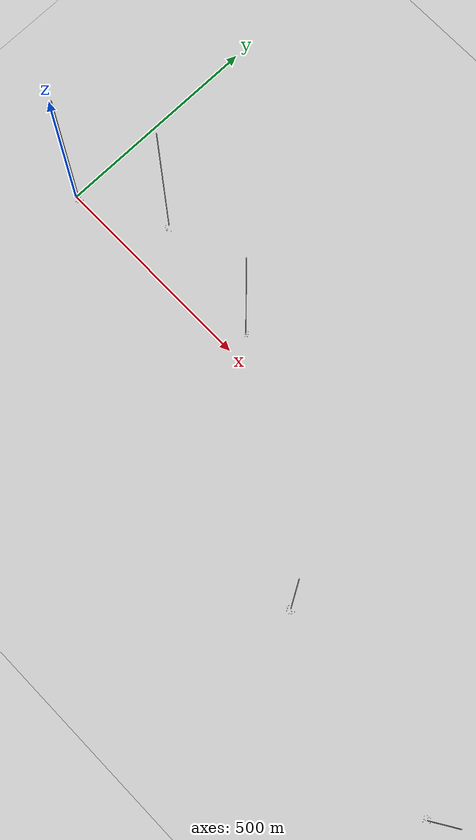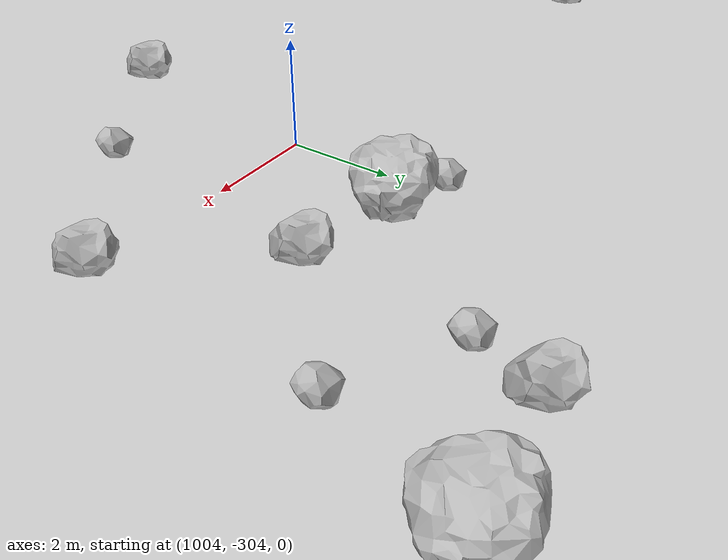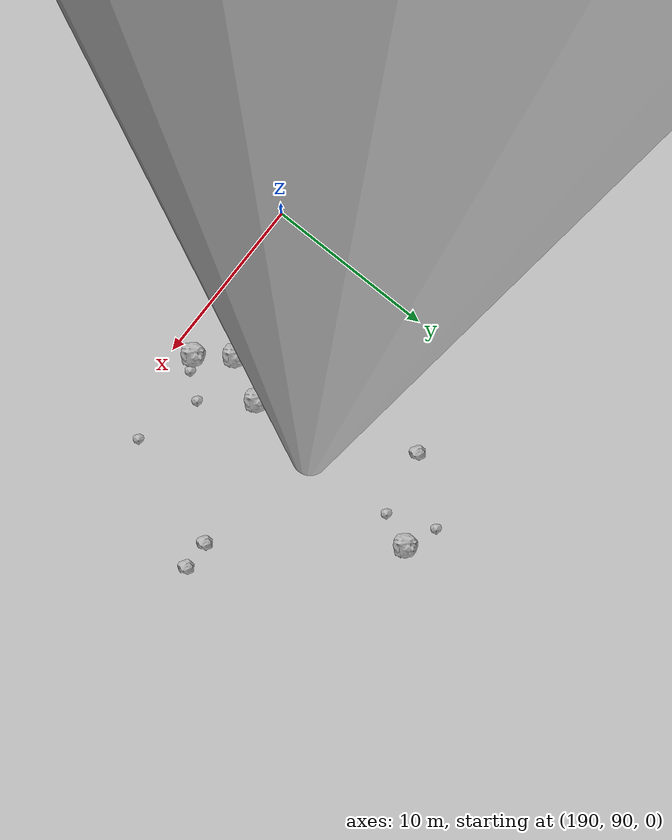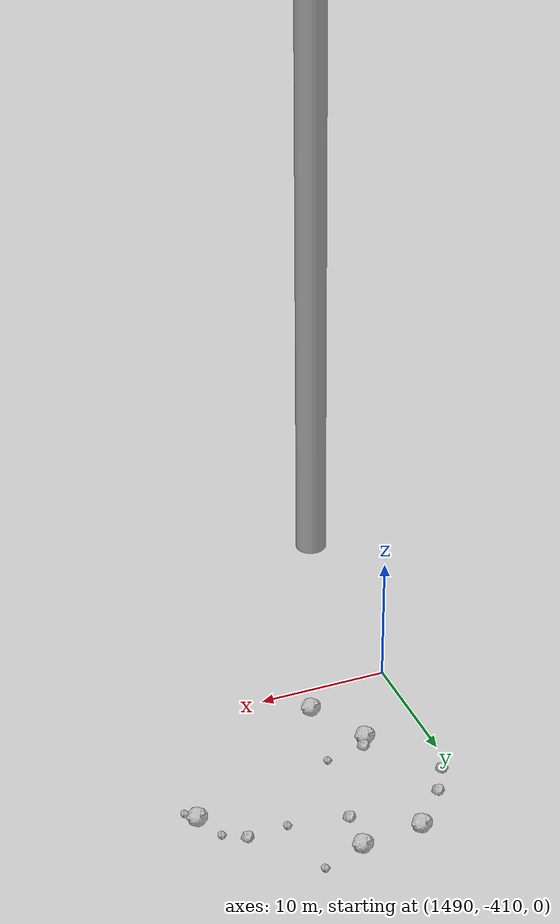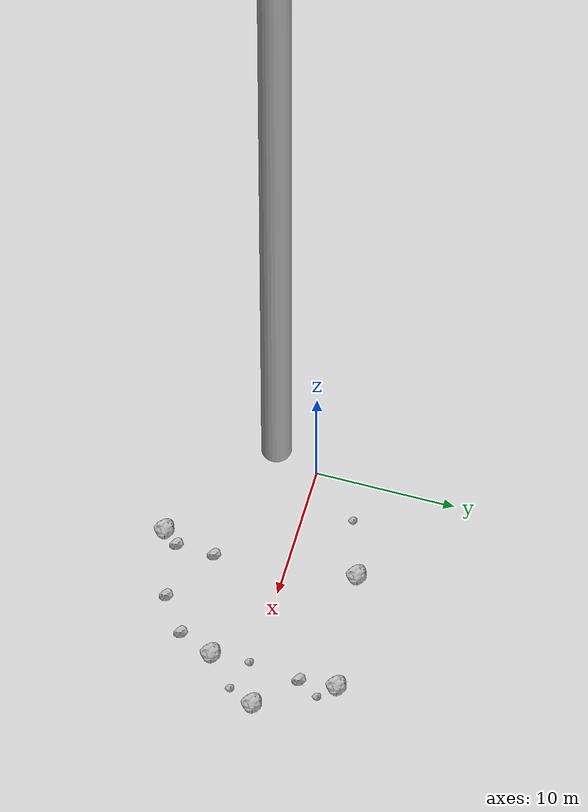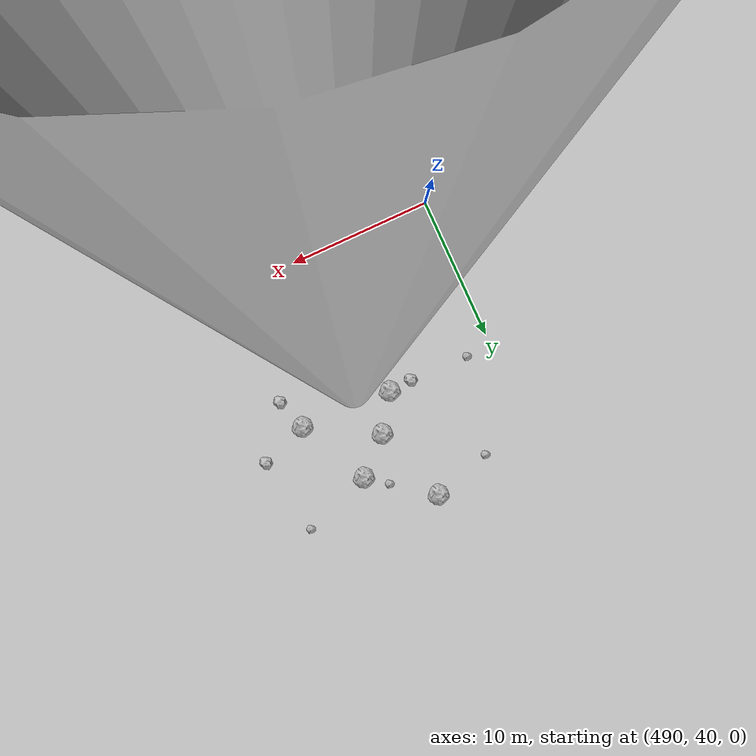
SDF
<?xml version="1.0" ?>
<sdf version="1.6">
  <world name="default">

    <include>
      <uri>model://custom_ground</uri>
    </include>

    <include>
      <uri>model://sun</uri>
    </include>

    <spherical_coordinates>
      <surface_model>EARTH_WGS84</surface_model>
      <latitude_deg>38.161479</latitude_deg>
      <longitude_deg>-122.454630</longitude_deg>
      <elevation>488.0</elevation>
      <heading_deg>90</heading_deg>
    </spherical_coordinates>

    <model name="rock1_0_0">
      <include>
        <uri>model://rock1</uri>
        <pose>18.989054035852487 0.7045006014862114 0.5 0 0 0</pose>
      </include>
    </model>
    <model name="rock1_0_1">
      <include>
        <uri>model://rock1</uri>
        <pose>16.023350306724165 -3.0867173951060796 0.5 0 0 0</pose>
      </include>
    </model>
    <model name="rock1_0_2">
      <include>
        <uri>model://rock1</uri>
        <pose>16.111193745884734 5.923418710677344 0.5 0 0 0</pose>
      </include>
    </model>
    <model name="rock1_0_3">
      <include>
        <uri>model://rock1</uri>
        <pose>7.390333618002898 4.940157309376845 0.5 0 0 0</pose>
      </include>
    </model>
    <model name="rock1_0_4">
      <include>
        <uri>model://rock1</uri>
        <pose>7.517460904840592 -8.90882082147077 0.5 0 0 0</pose>
      </include>
    </model>
    <model name="rock2_0_0">
      <include>
        <uri>model://rock2</uri>
        <pose>14.876389987005956 -5.53582345515755 0.3 0 0 0</pose>
      </include>
    </model>
    <model name="rock2_0_1">
      <include>
        <uri>model://rock2</uri>
        <pose>8.28474099945091 -7.773154291808197 0.3 0 0 0</pose>
      </include>
    </model>
    <model name="rock2_0_2">
      <include>
        <uri>model://rock2</uri>
        <pose>12.349730737134774 -7.330387547113997 0.3 0 0 0</pose>
      </include>
    </model>
    <model name="rock2_0_3">
      <include>
        <uri>model://rock2</uri>
        <pose>16.228125532112475 3.320951220334706 0.3 0 0 0</pose>
      </include>
    </model>
    <model name="rock2_0_4">
      <include>
        <uri>model://rock2</uri>
        <pose>8.368856235843529 -5.025133609918065 0.3 0 0 0</pose>
      </include>
    </model>
    <model name="rock3_0_0">
      <include>
        <uri>model://rock3</uri>
        <pose>15.76767446999169 -0.3987612154721809 0.2 0 0 0</pose>
      </include>
    </model>
    <model name="rock3_0_1">
      <include>
        <uri>model://rock3</uri>
        <pose>18.077071377113263 -1.1279314865971308 0.2 0 0 0</pose>
      </include>
    </model>
    <model name="rock3_0_2">
      <include>
        <uri>model://rock3</uri>
        <pose>17.08145574281692 4.797958488627263 0.2 0 0 0</pose>
      </include>
    </model>
    <model name="rock3_0_3">
      <include>
        <uri>model://rock3</uri>
        <pose>7.301367111467661 -8.981494291081123 0.2 0 0 0</pose>
      </include>
    </model>
    <model name="rock3_0_4">
      <include>
        <uri>model://rock3</uri>
        <pose>3.0748932684428865 3.4947798703726 0.2 0 0 0</pose>
      </include>
    </model>
    <model name="rock1_1_0">
      <include>
        <uri>model://rock1</uri>
        <pose>198.08085332608792 92.94462721582936 0.5 0 0 0</pose>
      </include>
    </model>
    <model name="rock1_1_1">
      <include>
        <uri>model://rock1</uri>
        <pose>192.51135190562843 94.38405351307335 0.5 0 0 0</pose>
      </include>
    </model>
    <model name="rock1_1_2">
      <include>
        <uri>model://rock1</uri>
        <pose>199.31656905972412 95.50188652743306 0.5 0 0 0</pose>
      </include>
    </model>
    <model name="rock1_1_3">
      <include>
        <uri>model://rock1</uri>
        <pose>199.52241928089504 91.05946981288633 0.5 0 0 0</pose>
      </include>
    </model>
    <model name="rock1_1_4">
      <include>
        <uri>model://rock1</uri>
        <pose>200.51826166460637 107.31536424822568 0.5 0 0 0</pose>
      </include>
    </model>
    <model name="rock2_1_0">
      <include>
        <uri>model://rock2</uri>
        <pose>190.0591844167219 99.03600891986932 0.3 0 0 0</pose>
      </include>
    </model>
    <model name="rock2_1_1">
      <include>
        <uri>model://rock2</uri>
        <pose>209.21180610117491 98.31016374193622 0.3 0 0 0</pose>
      </include>
    </model>
    <model name="rock2_1_2">
      <include>
        <uri>model://rock2</uri>
        <pose>207.47551183383018 98.27962440302062 0.3 0 0 0</pose>
      </include>
    </model>
    <model name="rock2_1_3">
      <include>
        <uri>model://rock2</uri>
        <pose>197.1128716602974 100.35384834094086 0.3 0 0 0</pose>
      </include>
    </model>
    <model name="rock2_1_4">
      <include>
        <uri>model://rock2</uri>
        <pose>195.88874697218387 104.59323385614461 0.3 0 0 0</pose>
      </include>
    </model>
    <model name="rock3_1_0">
      <include>
        <uri>model://rock3</uri>
        <pose>199.70532207261098 105.33025542158781 0.2 0 0 0</pose>
      </include>
    </model>
    <model name="rock3_1_1">
      <include>
        <uri>model://rock3</uri>
        <pose>205.17448756023137 91.59980572512617 0.2 0 0 0</pose>
      </include>
    </model>
    <model name="rock3_1_2">
      <include>
        <uri>model://rock3</uri>
        <pose>200.29333123313467 91.4998393151248 0.2 0 0 0</pose>
      </include>
    </model>
    <model name="rock3_1_3">
      <include>
        <uri>model://rock3</uri>
        <pose>198.61673850078003 108.08878564895915 0.2 0 0 0</pose>
      </include>
    </model>
    <model name="rock3_1_4">
      <include>
        <uri>model://rock3</uri>
        <pose>201.3896926700556 92.86322230244407 0.2 0 0 0</pose>
      </include>
    </model>
    <model name="rock1_2_0">
      <include>
        <uri>model://rock1</uri>
        <pose>497.61764499620085 58.667602222358056 0.5 0 0 0</pose>
      </include>
    </model>
    <model name="rock1_2_1">
      <include>
        <uri>model://rock1</uri>
        <pose>501.7860299177521 55.48051770057091 0.5 0 0 0</pose>
      </include>
    </model>
    <model name="rock1_2_2">
      <include>
        <uri>model://rock1</uri>
        <pose>497.69572884833707 50.82114679330412 0.5 0 0 0</pose>
      </include>
    </model>
    <model name="rock1_2_3">
      <include>
        <uri>model://rock1</uri>
        <pose>504.1747924837572 50.56345716918521 0.5 0 0 0</pose>
      </include>
    </model>
    <model name="rock1_2_4">
      <include>
        <uri>model://rock1</uri>
        <pose>499.38793523496486 53.274795956962045 0.5 0 0 0</pose>
      </include>
    </model>
    <model name="rock2_2_0">
      <include>
        <uri>model://rock2</uri>
        <pose>496.0257040772272 50.738558261495015 0.3 0 0 0</pose>
      </include>
    </model>
    <model name="rock2_2_1">
      <include>
        <uri>model://rock2</uri>
        <pose>500.46778285412097 46.64946911104121 0.3 0 0 0</pose>
      </include>
    </model>
    <model name="rock2_2_2">
      <include>
        <uri>model://rock2</uri>
        <pose>497.0598513960205 40.97914079101106 0.3 0 0 0</pose>
      </include>
    </model>
    <model name="rock2_2_3">
      <include>
        <uri>model://rock2</uri>
        <pose>507.4709702821078 51.790050192670336 0.3 0 0 0</pose>
      </include>
    </model>
    <model name="rock2_2_4">
      <include>
        <uri>model://rock2</uri>
        <pose>504.86413292771135 48.38394002794549 0.3 0 0 0</pose>
      </include>
    </model>
    <model name="rock3_2_0">
      <include>
        <uri>model://rock3</uri>
        <pose>506.53469229435416 57.19745894323128 0.2 0 0 0</pose>
      </include>
    </model>
    <model name="rock3_2_1">
      <include>
        <uri>model://rock3</uri>
        <pose>500.31952667162227 56.61885577904177 0.2 0 0 0</pose>
      </include>
    </model>
    <model name="rock3_2_2">
      <include>
        <uri>model://rock3</uri>
        <pose>501.05256281317827 46.31163187415047 0.2 0 0 0</pose>
      </include>
    </model>
    <model name="rock3_2_3">
      <include>
        <uri>model://rock3</uri>
        <pose>491.80398322442795 50.83885384766704 0.2 0 0 0</pose>
      </include>
    </model>
    <model name="rock3_2_4">
      <include>
        <uri>model://rock3</uri>
        <pose>493.4733619942428 57.52808105111965 0.2 0 0 0</pose>
      </include>
    </model>
    <model name="rock1_3_0">
      <include>
        <uri>model://rock1</uri>
        <pose>991.0546196726501 -297.3078929330764 0.5 0 0 0</pose>
      </include>
    </model>
    <model name="rock1_3_1">
      <include>
        <uri>model://rock1</uri>
        <pose>1009.3862826363379 -297.5095643685142 0.5 0 0 0</pose>
      </include>
    </model>
    <model name="rock1_3_2">
      <include>
        <uri>model://rock1</uri>
        <pose>993.5505071048048 -303.14166264902633 0.5 0 0 0</pose>
      </include>
    </model>
    <model name="rock1_3_3">
      <include>
        <uri>model://rock1</uri>
        <pose>996.2616662900147 -307.82427806886534 0.5 0 0 0</pose>
      </include>
    </model>
    <model name="rock1_3_4">
      <include>
        <uri>model://rock1</uri>
        <pose>1004.8215677519487 -301.3932454377138 0.5 0 0 0</pose>
      </include>
    </model>
    <model name="rock2_3_0">
      <include>
        <uri>model://rock2</uri>
        <pose>1008.5921975164708 -304.15755666940726 0.3 0 0 0</pose>
      </include>
    </model>
    <model name="rock2_3_1">
      <include>
        <uri>model://rock2</uri>
        <pose>1006.6309642988317 -301.74464463219266 0.3 0 0 0</pose>
      </include>
    </model>
    <model name="rock2_3_2">
      <include>
        <uri>model://rock2</uri>
        <pose>1007.1759357542119 -297.6756934088562 0.3 0 0 0</pose>
      </include>
    </model>
    <model name="rock2_3_3">
      <include>
        <uri>model://rock2</uri>
        <pose>1003.3318267017619 -308.54253065298616 0.3 0 0 0</pose>
      </include>
    </model>
    <model name="rock2_3_4">
      <include>
        <uri>model://rock2</uri>
        <pose>991.0167517657077 -301.4596056546811 0.3 0 0 0</pose>
      </include>
    </model>
    <model name="rock3_3_0">
      <include>
        <uri>model://rock3</uri>
        <pose>1006.791649174731 -298.88764926234086 0.2 0 0 0</pose>
      </include>
    </model>
    <model name="rock3_3_1">
      <include>
        <uri>model://rock3</uri>
        <pose>1008.6794028815748 -299.93420570878635 0.2 0 0 0</pose>
      </include>
    </model>
    <model name="rock3_3_2">
      <include>
        <uri>model://rock3</uri>
        <pose>998.849980556291 -294.44560152814245 0.2 0 0 0</pose>
      </include>
    </model>
    <model name="rock3_3_3">
      <include>
        <uri>model://rock3</uri>
        <pose>1006.0310927034463 -306.5335436077093 0.2 0 0 0</pose>
      </include>
    </model>
    <model name="rock3_3_4">
      <include>
        <uri>model://rock3</uri>
        <pose>1003.6314456777706 -301.0530647832627 0.2 0 0 0</pose>
      </include>
    </model>
    <model name="rock1_4_0">
      <include>
        <uri>model://rock1</uri>
        <pose>1494.8689759869274 -391.99419617087756 0.5 0 0 0</pose>
      </include>
    </model>
    <model name="rock1_4_1">
      <include>
        <uri>model://rock1</uri>
        <pose>1499.5332288150753 -391.54860429576803 0.5 0 0 0</pose>
      </include>
    </model>
    <model name="rock1_4_2">
      <include>
        <uri>model://rock1</uri>
        <pose>1509.2326400854372 -398.45349343911045 0.5 0 0 0</pose>
      </include>
    </model>
    <model name="rock1_4_3">
      <include>
        <uri>model://rock1</uri>
        <pose>1497.1123220769562 -407.3478740430964 0.5 0 0 0</pose>
      </include>
    </model>
    <model name="rock1_4_4">
      <include>
        <uri>model://rock1</uri>
        <pose>1494.6750281046257 -402.65727975477836 0.5 0 0 0</pose>
      </include>
    </model>
    <model name="rock2_4_0">
      <include>
        <uri>model://rock2</uri>
        <pose>1490.8190099822702 -397.32623466208025 0.3 0 0 0</pose>
      </include>
    </model>
    <model name="rock2_4_1">
      <include>
        <uri>model://rock2</uri>
        <pose>1506.5771723555347 -395.39599998442776 0.3 0 0 0</pose>
      </include>
    </model>
    <model name="rock2_4_2">
      <include>
        <uri>model://rock2</uri>
        <pose>1499.1730621325319 -394.7650151531118 0.3 0 0 0</pose>
      </include>
    </model>
    <model name="rock2_4_3">
      <include>
        <uri>model://rock2</uri>
        <pose>1495.1016841592066 -401.8627709055349 0.3 0 0 0</pose>
      </include>
    </model>
    <model name="rock2_4_4">
      <include>
        <uri>model://rock2</uri>
        <pose>1492.1304358531152 -395.1376713685239 0.3 0 0 0</pose>
      </include>
    </model>
    <model name="rock3_4_0">
      <include>
        <uri>model://rock3</uri>
        <pose>1503.4778858946495 -395.6349690318593 0.2 0 0 0</pose>
      </include>
    </model>
    <model name="rock3_4_1">
      <include>
        <uri>model://rock3</uri>
        <pose>1502.682775920544 -390.5447958704381 0.2 0 0 0</pose>
      </include>
    </model>
    <model name="rock3_4_2">
      <include>
        <uri>model://rock3</uri>
        <pose>1508.1013532881104 -396.38096944349775 0.2 0 0 0</pose>
      </include>
    </model>
    <model name="rock3_4_3">
      <include>
        <uri>model://rock3</uri>
        <pose>1509.7699588174166 -399.5041840985596 0.2 0 0 0</pose>
      </include>
    </model>
    <model name="rock3_4_4">
      <include>
        <uri>model://rock3</uri>
        <pose>1498.1274274304103 -401.3460924348146 0.2 0 0 0</pose>
      </include>
    </model>

    <model name="cylinder_1">
      <static>true</static>
      <link name="link">
        <visual name="visual">
          <geometry>
            <cylinder>
              <radius>1</radius>
              <length>500</length>
            </cylinder>
          </geometry>
        </visual>
      </link>
      <pose>10 0 270 0 0 0</pose>
    </model>

    <model name="cylinder_2">
      <static>true</static>
      <link name="link">
        <visual name="visual">
          <geometry>
            <cylinder>
              <radius>1</radius>
              <length>500</length>
            </cylinder>
          </geometry>
        </visual>
      </link>
      <pose>200 100 270 0 0 0</pose>
    </model>

    <model name="cylinder_3">
      <static>true</static>
      <link name="link">
        <visual name="visual">
          <geometry>
            <cylinder>
              <radius>1</radius>
              <length>500</length>
            </cylinder>
          </geometry>
        </visual>
      </link>
      <pose>500 50 270 0 0 0</pose>
    </model>

    <model name="cylinder_4">
      <static>true</static>
      <link name="link">
        <visual name="visual">
          <geometry>
            <cylinder>
              <radius>1</radius>
              <length>500</length>
            </cylinder>
          </geometry>
        </visual>
      </link>
      <pose>1000 -300 270 0 0 0</pose>
    </model>

    <model name="cylinder_5">
      <static>true</static>
      <link name="link">
        <visual name="visual">
          <geometry>
            <cylinder>
              <radius>1</radius>
              <length>500</length>
            </cylinder>
          </geometry>
        </visual>
      </link>
      <pose>1500 -400 270 0 0 0</pose>
    </model>

  </world>
</sdf>

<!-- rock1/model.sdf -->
<sdf version="1.6">
  <model name="rock1">
    <static>true</static> <!-- Set to true if the model should not move -->
    <pose>0 0 0 0 0 0</pose>

    <!--z offset is 0.5 for full scale-->

    <link name="link">
      <collision name="rock1_collision">
        <geometry>
          <mesh>
            <uri>model://meshes/rock1.dae</uri>
          </mesh>
        </geometry>
      </collision>
      <visual name="rock1_visual">
        <geometry>
          <mesh>
            <uri>model://meshes/rock1.dae</uri>
          </mesh>
        </geometry>
        <material>
          <script>
            <uri>model://materials/scripts/sand_pebbles.material</uri>
            <name>custom_ground/Image</name>
          </script>
        </material>
      </visual>
    </link>
  </model>
</sdf>

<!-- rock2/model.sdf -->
<sdf version="1.6">
  <model name="rock2">
    <static>true</static> <!-- Set to true if the model should not move -->
    <pose>0 0 0 0 0 0</pose>

    <!--z offset is 0.3 for full scale-->

    <link name="link">
      <collision name="rock2_collision">
        <geometry>
          <mesh>
            <uri>model://meshes/rock2.dae</uri>
          </mesh>
        </geometry>
      </collision>
      <visual name="rock2_visual">
        <geometry>
          <mesh>
            <uri>model://meshes/rock2.dae</uri>
          </mesh>
        </geometry>
        <material>
          <script>
            <uri>model://materials/scripts/sand_pebbles.material</uri>
            <name>custom_ground/Image</name>
          </script>
        </material>
      </visual>
    </link>
  </model>
</sdf>

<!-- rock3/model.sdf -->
<sdf version="1.6">
  <model name="rock3">
    <static>true</static> <!-- Set to true if the model should not move -->
    <pose>0 0 0 0 0 0</pose>

    <!--z offset is 0.2 for full scale-->

    <link name="link">
      <collision name="rock3_collision">
        <geometry>
          <mesh>
            <uri>model://meshes/rock3.dae</uri>
          </mesh>
        </geometry>
      </collision>
      <visual name="rock3_visual">
        <geometry>
          <mesh>
            <uri>model://meshes/rock3.dae</uri>
          </mesh>
        </geometry>
        <material>
          <script>
            <uri>model://materials/scripts/sand_pebbles.material</uri>
            <name>custom_ground/Image</name>
          </script>
        </material>
      </visual>
    </link>
  </model>
</sdf>

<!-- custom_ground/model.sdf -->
<sdf version="1.6">
  <model name="custom_ground">
    <static>true</static> <!-- Ground is static and immovable -->
    <link name="ground_link">
      <pose>240 0 0 0 0 0</pose> <!-- Position and orientation relative to the world -->
      <!-- Visual Representation -->
      <visual name="ground_visual">
        <geometry>
          <plane>
            <normal>0 0 1</normal> <!-- Upward facing plane -->
            <size>500 500</size> <!-- Size of the plane -->
          </plane>
        </geometry>
        <material>
          <script>
            <uri>model://materials/scripts/sand_pebbles.material</uri>
            <name>custom_ground/Image</name>
          </script>
        </material>
      </visual>

      <!-- Collision Representation -->
      <collision name="ground_collision">
        <geometry>
          <plane>
            <normal>0 0 1</normal>
            <size>100 100</size>
          </plane>
        </geometry>
      </collision>

    </link>
  </model>
</sdf>
